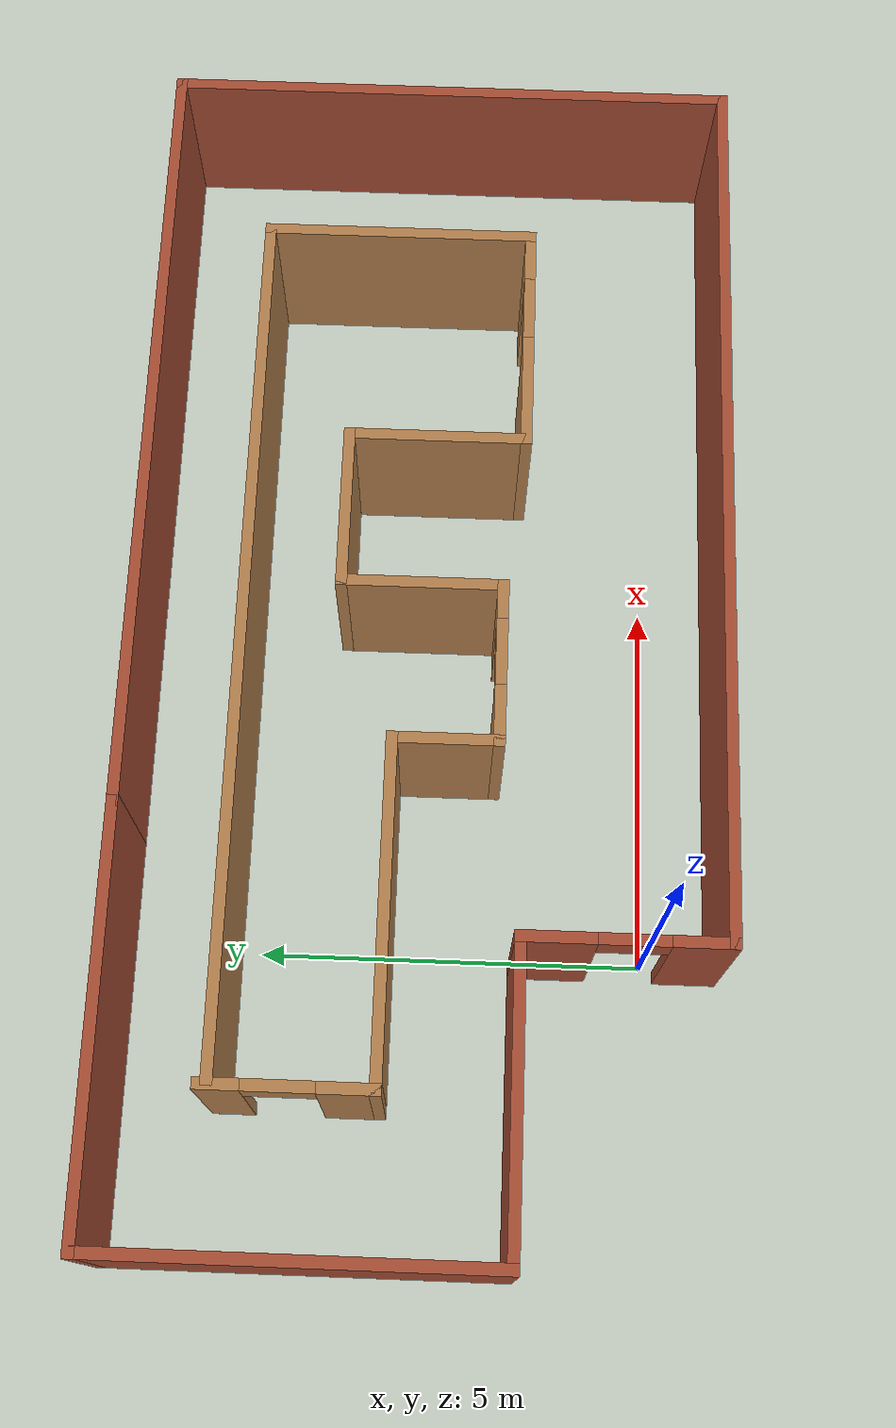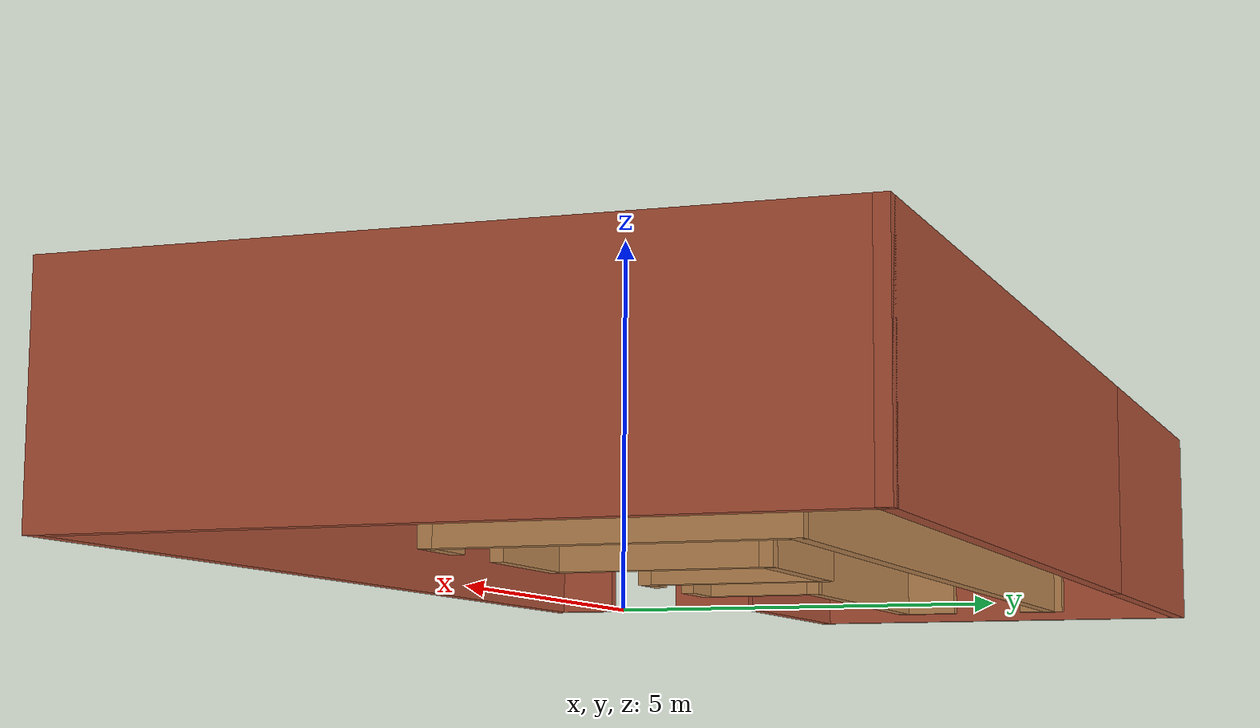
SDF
<?xml version='1.0'?>
<sdf version='1.6'>
  <model name='newworld'>
    <pose frame=''>4.00666 2.90984 0 0 -0 0</pose>
    <link name='Wall_10'>
      <collision name='Wall_10_Collision'>
        <geometry>
          <box>
            <size>4 0.15 2.5</size>
          </box>
        </geometry>
        <pose frame=''>0 0 1.25 0 -0 0</pose>
      </collision>
      <visual name='Wall_10_Visual'>
        <pose frame=''>0 0 1.25 0 -0 0</pose>
        <geometry>
          <box>
            <size>4 0.15 2.5</size>
          </box>
        </geometry>
        <material>
          <script>
            <uri>file://media/materials/scripts/gazebo.material</uri>
            <name>Gazebo/Bricks</name>
          </script>
          <ambient>1 1 1 1</ambient>
        </material>
        <meta>
          <layer>0</layer>
        </meta>
      </visual>
      <pose frame=''>-6.05 -1.25 0 0 -0 0</pose>
    </link>
    <link name='Wall_11'>
      <pose frame=''>-4.125 -2.55 0 0 0 -1.5708</pose>
      <visual name='Wall_11_Visual_0'>
        <pose frame=''>-0.867486 0 1.25 0 -0 0</pose>
        <geometry>
          <box>
            <size>1.01503 0.15 2.5</size>
          </box>
        </geometry>
        <material>
          <script>
            <uri>file://media/materials/scripts/gazebo.material</uri>
            <name>Gazebo/Bricks</name>
          </script>
          <ambient>1 1 1 1</ambient>
        </material>
        <meta>
          <layer>0</layer>
        </meta>
      </visual>
      <collision name='Wall_11_Collision_0'>
        <geometry>
          <box>
            <size>1.01503 0.15 2.5</size>
          </box>
        </geometry>
        <pose frame=''>-0.867486 0 1.25 0 -0 0</pose>
      </collision>
      <visual name='Wall_11_Visual_1'>
        <pose frame=''>0.957514 0 1.25 0 -0 0</pose>
        <geometry>
          <box>
            <size>0.834973 0.15 2.5</size>
          </box>
        </geometry>
        <material>
          <script>
            <uri>file://media/materials/scripts/gazebo.material</uri>
            <name>Gazebo/Bricks</name>
          </script>
          <ambient>1 1 1 1</ambient>
        </material>
        <meta>
          <layer>0</layer>
        </meta>
      </visual>
      <collision name='Wall_11_Collision_1'>
        <geometry>
          <box>
            <size>0.834973 0.15 2.5</size>
          </box>
        </geometry>
        <pose frame=''>0.957514 0 1.25 0 -0 0</pose>
      </collision>
      <visual name='Wall_11_Visual_2'>
        <pose frame=''>0.090027 0 2.25 0 -0 0</pose>
        <geometry>
          <box>
            <size>0.9 0.15 0.5</size>
          </box>
        </geometry>
        <material>
          <script>
            <uri>file://media/materials/scripts/gazebo.material</uri>
            <name>Gazebo/Bricks</name>
          </script>
          <ambient>1 1 1 1</ambient>
        </material>
        <meta>
          <layer>0</layer>
        </meta>
      </visual>
      <collision name='Wall_11_Collision_2'>
        <geometry>
          <box>
            <size>0.9 0.15 0.5</size>
          </box>
        </geometry>
        <pose frame=''>0.090027 0 2.25 0 -0 0</pose>
      </collision>
    </link>
    <link name='Wall_12'>
      <collision name='Wall_12_Collision'>
        <geometry>
          <box>
            <size>12.25 0.15 2.5</size>
          </box>
        </geometry>
        <pose frame=''>0 0 1.25 0 -0 0</pose>
      </collision>
      <visual name='Wall_12_Visual'>
        <pose frame=''>0 0 1.25 0 -0 0</pose>
        <geometry>
          <box>
            <size>12.25 0.15 2.5</size>
          </box>
        </geometry>
        <material>
          <script>
            <uri>file://media/materials/scripts/gazebo.material</uri>
            <name>Gazebo/Bricks</name>
          </script>
          <ambient>1 1 1 1</ambient>
        </material>
        <meta>
          <layer>0</layer>
        </meta>
      </visual>
      <pose frame=''>1.925 -3.85 0 0 -0 0</pose>
    </link>
    <link name='Wall_15'>
      <collision name='Wall_15_Collision'>
        <geometry>
          <box>
            <size>7.85 0.15 2.5</size>
          </box>
        </geometry>
        <pose frame=''>0 0 1.25 0 -0 0</pose>
      </collision>
      <visual name='Wall_15_Visual'>
        <pose frame=''>0 0 1.25 0 -0 0</pose>
        <geometry>
          <box>
            <size>7.85 0.15 2.5</size>
          </box>
        </geometry>
        <material>
          <script>
            <uri>file://media/materials/scripts/gazebo.material</uri>
            <name>Gazebo/Bricks</name>
          </script>
          <ambient>1 1 1 1</ambient>
        </material>
        <meta>
          <layer>0</layer>
        </meta>
      </visual>
      <pose frame=''>7.975 0 0 0 -0 1.5708</pose>
    </link>
    <link name='Wall_17'>
      <collision name='Wall_17_Collision'>
        <geometry>
          <box>
            <size>11.75 0.15 2.5</size>
          </box>
        </geometry>
        <pose frame=''>0 0 1.25 0 -0 0</pose>
      </collision>
      <visual name='Wall_17_Visual'>
        <pose frame=''>0 0 1.25 0 -0 0</pose>
        <geometry>
          <box>
            <size>11.75 0.15 2.5</size>
          </box>
        </geometry>
        <material>
          <script>
            <uri>file://media/materials/scripts/gazebo.material</uri>
            <name>Gazebo/Wood</name>
          </script>
          <ambient>1 1 1 1</ambient>
        </material>
        <meta>
          <layer>0</layer>
        </meta>
      </visual>
      <pose frame=''>-0.169813 2.42069 0 0 -0 0</pose>
    </link>
    <link name='Wall_18'>
      <collision name='Wall_18_Collision'>
        <geometry>
          <box>
            <size>3.75 0.15 2.5</size>
          </box>
        </geometry>
        <pose frame=''>0 0 1.25 0 -0 0</pose>
      </collision>
      <visual name='Wall_18_Visual'>
        <pose frame=''>0 0 1.25 0 -0 0</pose>
        <geometry>
          <box>
            <size>3.75 0.15 2.5</size>
          </box>
        </geometry>
        <material>
          <script>
            <uri>file://media/materials/scripts/gazebo.material</uri>
            <name>Gazebo/Wood</name>
          </script>
          <ambient>1 1 1 1</ambient>
        </material>
        <meta>
          <layer>0</layer>
        </meta>
      </visual>
      <pose frame=''>5.63019 0.620692 0 0 0 -1.5708</pose>
    </link>
    <link name='Wall_19'>
      <pose frame=''>4.08019 -1.17931 0 0 -0 3.14159</pose>
      <visual name='Wall_19_Visual_0'>
        <pose frame=''>-1.25168 0 1.25 0 -0 0</pose>
        <geometry>
          <box>
            <size>0.74663 0.15 2.5</size>
          </box>
        </geometry>
        <material>
          <script>
            <uri>file://media/materials/scripts/gazebo.material</uri>
            <name>Gazebo/Wood</name>
          </script>
          <ambient>1 1 1 1</ambient>
        </material>
        <meta>
          <layer>0</layer>
        </meta>
      </visual>
      <collision name='Wall_19_Collision_0'>
        <geometry>
          <box>
            <size>0.74663 0.15 2.5</size>
          </box>
        </geometry>
        <pose frame=''>-1.25168 0 1.25 0 -0 0</pose>
      </collision>
      <visual name='Wall_19_Visual_1'>
        <pose frame=''>0.823315 0 1.25 0 -0 0</pose>
        <geometry>
          <box>
            <size>1.60337 0.15 2.5</size>
          </box>
        </geometry>
        <material>
          <script>
            <uri>file://media/materials/scripts/gazebo.material</uri>
            <name>Gazebo/Wood</name>
          </script>
          <ambient>1 1 1 1</ambient>
        </material>
        <meta>
          <layer>0</layer>
        </meta>
      </visual>
      <collision name='Wall_19_Collision_1'>
        <geometry>
          <box>
            <size>1.60337 0.15 2.5</size>
          </box>
        </geometry>
        <pose frame=''>0.823315 0 1.25 0 -0 0</pose>
      </collision>
      <visual name='Wall_19_Visual_2'>
        <pose frame=''>-0.42837 0 2.25 0 -0 0</pose>
        <geometry>
          <box>
            <size>0.9 0.15 0.5</size>
          </box>
        </geometry>
        <material>
          <script>
            <uri>file://media/materials/scripts/gazebo.material</uri>
            <name>Gazebo/Wood</name>
          </script>
          <ambient>1 1 1 1</ambient>
        </material>
        <meta>
          <layer>0</layer>
        </meta>
      </visual>
      <collision name='Wall_19_Collision_2'>
        <geometry>
          <box>
            <size>0.9 0.15 0.5</size>
          </box>
        </geometry>
        <pose frame=''>-0.42837 0 2.25 0 -0 0</pose>
      </collision>
    </link>
    <link name='Wall_20'>
      <collision name='Wall_20_Collision'>
        <geometry>
          <box>
            <size>2.5 0.15 2.5</size>
          </box>
        </geometry>
        <pose frame=''>0 0 1.25 0 -0 0</pose>
      </collision>
      <visual name='Wall_20_Visual'>
        <pose frame=''>0 0 1.25 0 -0 0</pose>
        <geometry>
          <box>
            <size>2.5 0.15 2.5</size>
          </box>
        </geometry>
        <material>
          <script>
            <uri>file://media/materials/scripts/gazebo.material</uri>
            <name>Gazebo/Wood</name>
          </script>
          <ambient>1 1 1 1</ambient>
        </material>
        <meta>
          <layer>0</layer>
        </meta>
      </visual>
      <pose frame=''>2.53019 -0.004308 0 0 -0 1.5708</pose>
    </link>
    <link name='Wall_21'>
      <collision name='Wall_21_Collision'>
        <geometry>
          <box>
            <size>2.25 0.15 2.5</size>
          </box>
        </geometry>
        <pose frame=''>0 0 1.25 0 -0 0</pose>
      </collision>
      <visual name='Wall_21_Visual'>
        <pose frame=''>0 0 1.25 0 -0 0</pose>
        <geometry>
          <box>
            <size>2.25 0.15 2.5</size>
          </box>
        </geometry>
        <material>
          <script>
            <uri>file://media/materials/scripts/gazebo.material</uri>
            <name>Gazebo/Wood</name>
          </script>
          <ambient>1 1 1 1</ambient>
        </material>
        <meta>
          <layer>0</layer>
        </meta>
      </visual>
      <pose frame=''>1.48019 1.17069 0 0 -0 3.14159</pose>
    </link>
    <link name='Wall_22'>
      <collision name='Wall_22_Collision'>
        <geometry>
          <box>
            <size>2.25 0.15 2.5</size>
          </box>
        </geometry>
        <pose frame=''>0 0 1.25 0 -0 0</pose>
      </collision>
      <visual name='Wall_22_Visual'>
        <pose frame=''>0 0 1.25 0 -0 0</pose>
        <geometry>
          <box>
            <size>2.25 0.15 2.5</size>
          </box>
        </geometry>
        <material>
          <script>
            <uri>file://media/materials/scripts/gazebo.material</uri>
            <name>Gazebo/Wood</name>
          </script>
          <ambient>1 1 1 1</ambient>
        </material>
        <meta>
          <layer>0</layer>
        </meta>
      </visual>
      <pose frame=''>0.430187 0.120692 0 0 0 -1.5708</pose>
    </link>
    <link name='Wall_23'>
      <pose frame=''>-0.619813 -0.929308 0 0 -0 3.14159</pose>
      <visual name='Wall_23_Visual_0'>
        <pose frame=''>-0.858537 0 1.25 0 -0 0</pose>
        <geometry>
          <box>
            <size>0.532927 0.15 2.5</size>
          </box>
        </geometry>
        <material>
          <script>
            <uri>file://media/materials/scripts/gazebo.material</uri>
            <name>Gazebo/Wood</name>
          </script>
          <ambient>1 1 1 1</ambient>
        </material>
        <meta>
          <layer>0</layer>
        </meta>
      </visual>
      <collision name='Wall_23_Collision_0'>
        <geometry>
          <box>
            <size>0.532927 0.15 2.5</size>
          </box>
        </geometry>
        <pose frame=''>-0.858537 0 1.25 0 -0 0</pose>
      </collision>
      <visual name='Wall_23_Visual_1'>
        <pose frame=''>0.716463 0 1.25 0 -0 0</pose>
        <geometry>
          <box>
            <size>0.817073 0.15 2.5</size>
          </box>
        </geometry>
        <material>
          <script>
            <uri>file://media/materials/scripts/gazebo.material</uri>
            <name>Gazebo/Wood</name>
          </script>
          <ambient>1 1 1 1</ambient>
        </material>
        <meta>
          <layer>0</layer>
        </meta>
      </visual>
      <collision name='Wall_23_Collision_1'>
        <geometry>
          <box>
            <size>0.817073 0.15 2.5</size>
          </box>
        </geometry>
        <pose frame=''>0.716463 0 1.25 0 -0 0</pose>
      </collision>
      <visual name='Wall_23_Visual_2'>
        <pose frame=''>-0.142073 0 2.25 0 -0 0</pose>
        <geometry>
          <box>
            <size>0.9 0.15 0.5</size>
          </box>
        </geometry>
        <material>
          <script>
            <uri>file://media/materials/scripts/gazebo.material</uri>
            <name>Gazebo/Wood</name>
          </script>
          <ambient>1 1 1 1</ambient>
        </material>
        <meta>
          <layer>0</layer>
        </meta>
      </visual>
      <collision name='Wall_23_Collision_2'>
        <geometry>
          <box>
            <size>0.9 0.15 0.5</size>
          </box>
        </geometry>
        <pose frame=''>-0.142073 0 2.25 0 -0 0</pose>
      </collision>
    </link>
    <link name='Wall_24'>
      <collision name='Wall_24_Collision'>
        <geometry>
          <box>
            <size>1.5 0.15 2.5</size>
          </box>
        </geometry>
        <pose frame=''>0 0 1.25 0 -0 0</pose>
      </collision>
      <visual name='Wall_24_Visual'>
        <pose frame=''>0 0 1.25 0 -0 0</pose>
        <geometry>
          <box>
            <size>1.5 0.15 2.5</size>
          </box>
        </geometry>
        <material>
          <script>
            <uri>file://media/materials/scripts/gazebo.material</uri>
            <name>Gazebo/Wood</name>
          </script>
          <ambient>1 1 1 1</ambient>
        </material>
        <meta>
          <layer>0</layer>
        </meta>
      </visual>
      <pose frame=''>-1.66981 -0.254308 0 0 -0 1.5708</pose>
    </link>
    <link name='Wall_25'>
      <collision name='Wall_25_Collision'>
        <geometry>
          <box>
            <size>4.5 0.15 2.5</size>
          </box>
        </geometry>
        <pose frame=''>0 0 1.25 0 -0 0</pose>
      </collision>
      <visual name='Wall_25_Visual'>
        <pose frame=''>0 0 1.25 0 -0 0</pose>
        <geometry>
          <box>
            <size>4.5 0.15 2.5</size>
          </box>
        </geometry>
        <material>
          <script>
            <uri>file://media/materials/scripts/gazebo.material</uri>
            <name>Gazebo/Wood</name>
          </script>
          <ambient>1 1 1 1</ambient>
        </material>
        <meta>
          <layer>0</layer>
        </meta>
      </visual>
      <pose frame=''>-3.84481 0.420692 0 0 -0 3.14159</pose>
    </link>
    <link name='Wall_26'>
      <pose frame=''>-6.01981 1.47069 0 0 -0 1.5708</pose>
      <visual name='Wall_26_Visual_0'>
        <pose frame=''>-0.734227 0 1.25 0 -0 0</pose>
        <geometry>
          <box>
            <size>0.781547 0.15 2.5</size>
          </box>
        </geometry>
        <material>
          <script>
            <uri>file://media/materials/scripts/gazebo.material</uri>
            <name>Gazebo/Wood</name>
          </script>
          <ambient>1 1 1 1</ambient>
        </material>
        <meta>
          <layer>0</layer>
        </meta>
      </visual>
      <collision name='Wall_26_Collision_0'>
        <geometry>
          <box>
            <size>0.781547 0.15 2.5</size>
          </box>
        </geometry>
        <pose frame=''>-0.734227 0 1.25 0 -0 0</pose>
      </collision>
      <visual name='Wall_26_Visual_1'>
        <pose frame=''>0.840773 0 1.25 0 -0 0</pose>
        <geometry>
          <box>
            <size>0.568453 0.15 2.5</size>
          </box>
        </geometry>
        <material>
          <script>
            <uri>file://media/materials/scripts/gazebo.material</uri>
            <name>Gazebo/Wood</name>
          </script>
          <ambient>1 1 1 1</ambient>
        </material>
        <meta>
          <layer>0</layer>
        </meta>
      </visual>
      <collision name='Wall_26_Collision_1'>
        <geometry>
          <box>
            <size>0.568453 0.15 2.5</size>
          </box>
        </geometry>
        <pose frame=''>0.840773 0 1.25 0 -0 0</pose>
      </collision>
      <visual name='Wall_26_Visual_2'>
        <pose frame=''>0.106547 0 2.25 0 -0 0</pose>
        <geometry>
          <box>
            <size>0.9 0.15 0.5</size>
          </box>
        </geometry>
        <material>
          <script>
            <uri>file://media/materials/scripts/gazebo.material</uri>
            <name>Gazebo/Wood</name>
          </script>
          <ambient>1 1 1 1</ambient>
        </material>
        <meta>
          <layer>0</layer>
        </meta>
      </visual>
      <collision name='Wall_26_Collision_2'>
        <geometry>
          <box>
            <size>0.9 0.15 0.5</size>
          </box>
        </geometry>
        <pose frame=''>0.106547 0 2.25 0 -0 0</pose>
      </collision>
    </link>
    <link name='Wall_5'>
      <collision name='Wall_5_Collision'>
        <geometry>
          <box>
            <size>10.75 0.15 2.5</size>
          </box>
        </geometry>
        <pose frame=''>0 0 1.25 0 -0 0</pose>
      </collision>
      <visual name='Wall_5_Visual'>
        <pose frame=''>0 0 1.25 0 -0 0</pose>
        <geometry>
          <box>
            <size>10.75 0.15 2.5</size>
          </box>
        </geometry>
        <material>
          <script>
            <uri>file://media/materials/scripts/gazebo.material</uri>
            <name>Gazebo/Bricks</name>
          </script>
          <ambient>1 1 1 1</ambient>
        </material>
        <meta>
          <layer>0</layer>
        </meta>
      </visual>
      <pose frame=''>2.675 3.85 0 0 -0 0</pose>
    </link>
    <link name='Wall_7'>
      <collision name='Wall_7_Collision'>
        <geometry>
          <box>
            <size>5.5 0.15 2.5</size>
          </box>
        </geometry>
        <pose frame=''>0 0 1.25 0 -0 0</pose>
      </collision>
      <visual name='Wall_7_Visual'>
        <pose frame=''>0 0 1.25 0 -0 0</pose>
        <geometry>
          <box>
            <size>5.5 0.15 2.5</size>
          </box>
        </geometry>
        <material>
          <script>
            <uri>file://media/materials/scripts/gazebo.material</uri>
            <name>Gazebo/Bricks</name>
          </script>
          <ambient>1 1 1 1</ambient>
        </material>
        <meta>
          <layer>0</layer>
        </meta>
      </visual>
      <pose frame=''>-5.3 3.85 0 0 -0 3.14159</pose>
    </link>
    <link name='Wall_8'>
      <collision name='Wall_8_Collision'>
        <geometry>
          <box>
            <size>5.25 0.15 2.5</size>
          </box>
        </geometry>
        <pose frame=''>0 0 1.25 0 -0 0</pose>
      </collision>
      <visual name='Wall_8_Visual'>
        <pose frame=''>0 0 1.25 0 -0 0</pose>
        <geometry>
          <box>
            <size>5.25 0.15 2.5</size>
          </box>
        </geometry>
        <material>
          <script>
            <uri>file://media/materials/scripts/gazebo.material</uri>
            <name>Gazebo/Bricks</name>
          </script>
          <ambient>1 1 1 1</ambient>
        </material>
        <meta>
          <layer>0</layer>
        </meta>
      </visual>
      <pose frame=''>-7.975 1.3 0 0 0 -1.5708</pose>
    </link>
    <static>1</static>
  </model>
</sdf>
